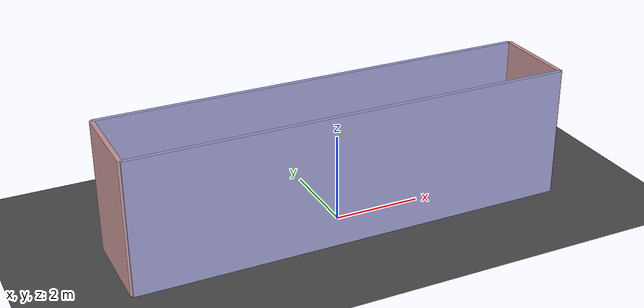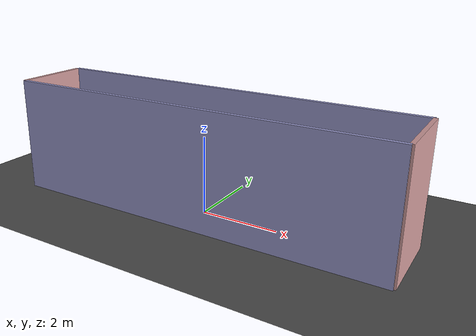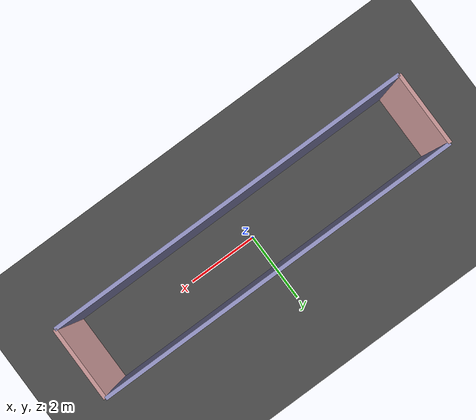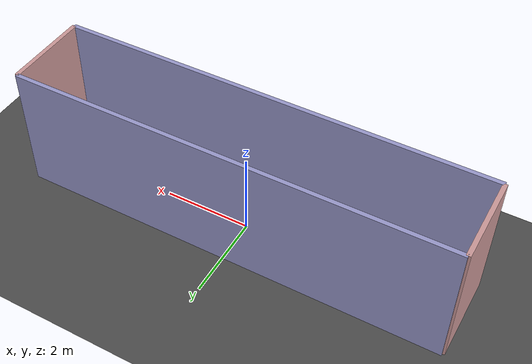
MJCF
<mujoco model="lidar_test_corridor">
  <option gravity="0 0 -9.81"/>

  <worldbody>
    <geom name="floor" type="plane" size="10 10 0.1" rgba="0.3 0.3 0.3 1"/>

    <body name="lidar_body" pos="0 0 0">
      <site name="lidar_site" pos="0 0 1.357" size="0.02" rgba="1 0 0 1"/>
    </body>

    <geom name="wall_left"  type="box" size="5.0 0.05 1.5" pos="0  1.0 1.5" rgba="0.6 0.6 0.8 1"/>
    <geom name="wall_right" type="box" size="5.0 0.05 1.5" pos="0 -1.0 1.5" rgba="0.6 0.6 0.8 1"/>
    <geom name="wall_far"   type="box" size="0.05 1.0 1.5" pos="5.0 0   1.5" rgba="0.8 0.6 0.6 1"/>
    <geom name="wall_near"  type="box" size="0.05 1.0 1.5" pos="-5.0 0  1.5" rgba="0.8 0.6 0.6 1"/>
  </worldbody>
</mujoco>
